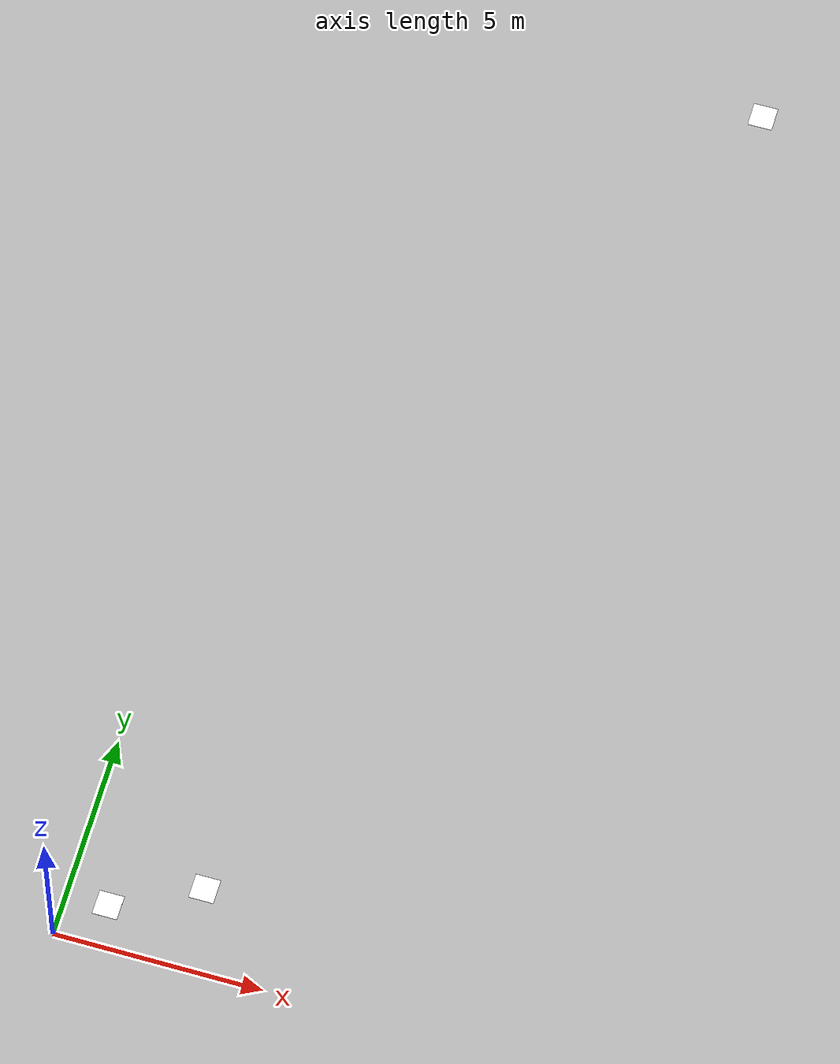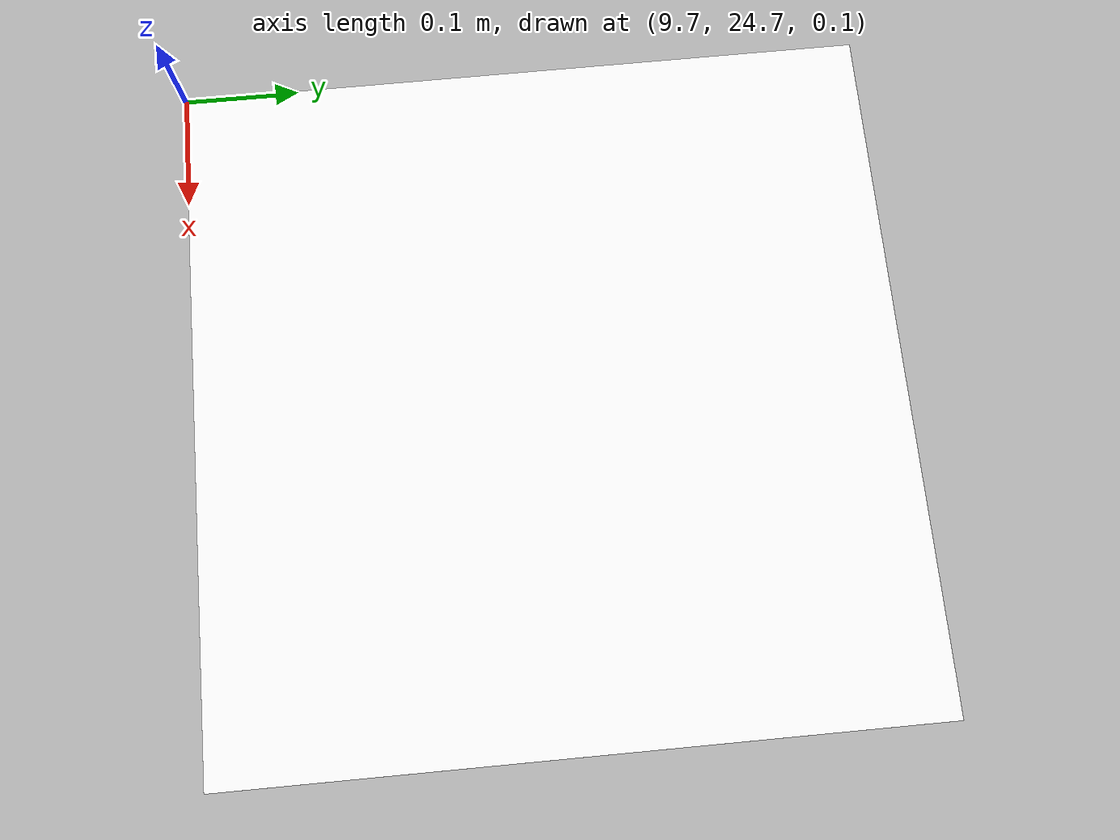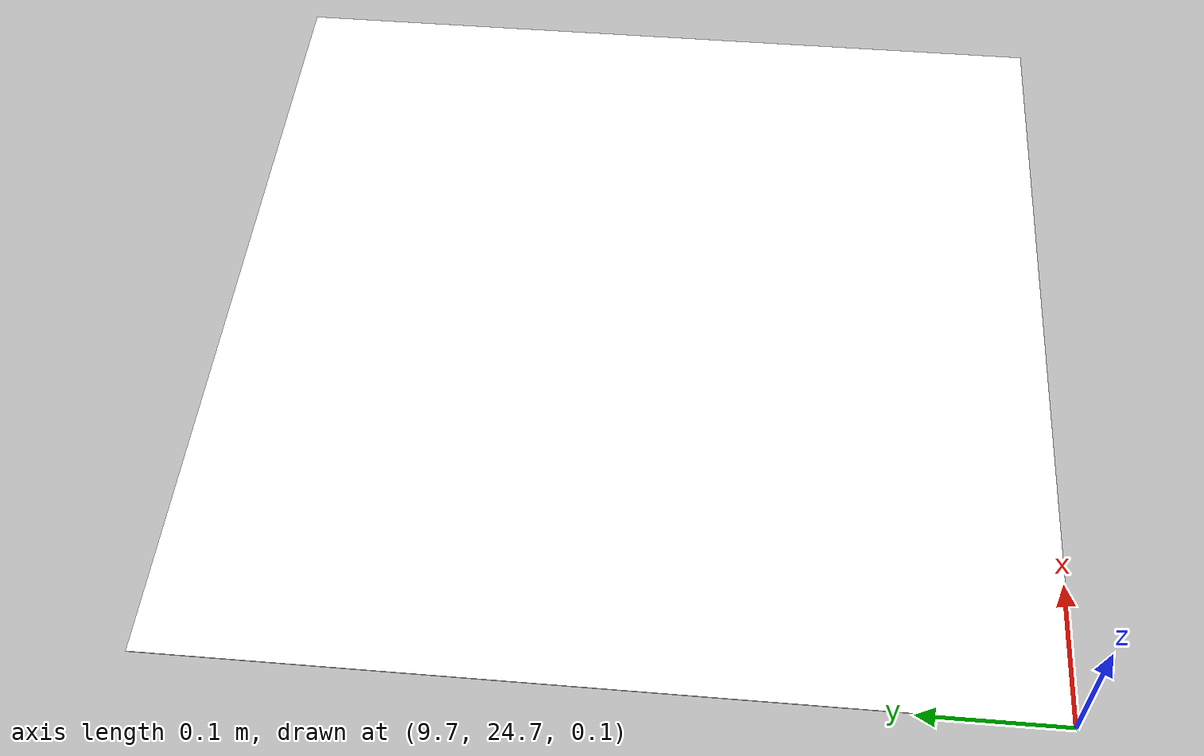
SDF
<sdf version="1.9">
 <world name="ELEC330Campus">
  <physics type="ode">
   <max_step_size>0.004</max_step_size>
   <real_time_factor>1.0</real_time_factor>
   <real_time_update_rate>250</real_time_update_rate>
  </physics>
  <gravity>0 0 -9.8</gravity>
  <magnetic_field>6e-06 2.3e-05 -4.2e-05</magnetic_field>
  <atmosphere type="adiabatic"/>
  <scene>
   <sky><clouds><speed>12</speed></clouds></sky>
   <grid>false</grid>
   <ambient>0.5 0.5 0.5 0.3</ambient>
   <background>0.3 0.3 0.3 0.3</background>
   <shadows>true</shadows>
  </scene>
  <model name="ground_plane">
   <static>true</static>
   <link name="link">
    <collision name="collision">
     <geometry><plane><normal>0 0 1</normal><size>1 1</size></plane></geometry>
     <surface>
      <friction><ode><mu>0.6</mu><mu2>0.6</mu2></ode></friction>
      <contact><collide_bitmask>65535</collide_bitmask><ode><min_depth>0.005</min_depth><kp>1e8</kp></ode></contact>
     </surface>
    </collision>
    <visual name="visual">
     <cast_shadows>false</cast_shadows>
     <geometry><plane><normal>0 0 1</normal><size>800 1200</size></plane></geometry>
     <material>
      <diffuse>0.6 1.0 0.25 0.5</diffuse>
      <specular>0 0 0 0</specular>
      <emissive>0 0 0 0</emissive>
     </material>
    </visual>
   </link>
  </model>
  <model name="campus_mesh">
   <static>true</static>
   <pose>0 -20 0 0 0 0</pose>
   <link name="link">
    <visual name="visual">
     <geometry><mesh><uri>meshes/ELEC330CampusTextured.dae</uri><scale>1 1 0.5</scale></mesh></geometry>
    </visual>
    <collision name="collision">
     <geometry><mesh><uri>meshes/ELEC330CampusTextured.dae</uri><scale>1 1 0.5</scale></mesh></geometry>
    </collision>
   </link>
  </model>
  <include>
   <uri>model://apriltag_landing_pad</uri>
   <name>landing_target</name>
   <pose>10.0 25.0 0.1 0 0 0</pose>
  </include>
  <include>
   <uri>model://apriltag_landing_pad_1</uri>
   <name>landing_target_1</name>
   <pose>1.0 1.0 0.1 0 0 0</pose>
  </include>
  <include>
   <uri>model://apriltag_landing_pad_2</uri>
   <name>landing_target_2</name>
   <pose>3.0 2.0 0.1 0 0 0</pose>
  </include>
  <light name="sunUTC" type="directional">
   <pose>0 0 500 0 0 0</pose>
   <intensity>1</intensity>
   <direction>0.001 0.625 -0.78</direction>
   <diffuse>0.904 0.904 0.904 1</diffuse>
   <specular>0.271 0.271 0.271 1</specular>
   <attenuation><range>2000</range><linear>0</linear><constant>1</constant><quadratic>0</quadratic></attenuation>
  </light>
  <light type="directional" name="sun_2">
   <pose>200 200 200 0 0 0</pose>
   <diffuse>0.5 0.5 0.5 0.3</diffuse>
   <specular>0.2 0.2 0.2 0.3</specular>
   <attenuation><range>2000</range><constant>1</constant><linear>0</linear><quadratic>0</quadratic></attenuation>
   <direction>0.01 0.01 -0.9</direction>
  </light>
  <spherical_coordinates>
   <surface_model>EARTH_WGS84</surface_model>
   <world_frame_orientation>ENU</world_frame_orientation>
   <latitude_deg>53.405822</latitude_deg>
   <longitude_deg>-2.965906</longitude_deg>
   <elevation>0</elevation>
  </spherical_coordinates>
 </world>
</sdf>

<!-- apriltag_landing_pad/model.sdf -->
<sdf version='1.9'>
  <model name='apriltag_landing_pad'>
    <static>true</static>
    <link name='pad_link'>
      <visual name='pad_visual'>
        <pose>0 0 0.003 0 0 0</pose>
        <geometry>
          <plane>
            <normal>0 0 1</normal>
            <size>0.6 0.6</size>
          </plane>
        </geometry>
        <material>
          <ambient>1 1 1 1</ambient>
          <diffuse>1 1 1 1</diffuse>
          <specular>0 0 0 1</specular>
          <pbr>
            <metal>
              <albedo_map>model://apriltag_landing_pad/materials/textures/tag36h11_id0.png</albedo_map>
              <roughness>1.0</roughness>
              <metalness>0.0</metalness>
            </metal>
          </pbr>
        </material>
      </visual>
      <collision name='pad_collision'>
        <geometry>
          <box><size>0.6 0.6 0.005</size></box>
        </geometry>
      </collision>
    </link>
  </model>
</sdf>

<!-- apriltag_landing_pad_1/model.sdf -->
<sdf version='1.9'>
  <model name='apriltag_landing_pad_1'>
    <static>true</static>
    <link name='pad_link'>
      <visual name='pad_visual'>
        <pose>0 0 0.003 0 0 0</pose>
        <geometry>
          <plane>
            <normal>0 0 1</normal>
            <size>0.6 0.6</size>
          </plane>
        </geometry>
        <material>
          <ambient>1 1 1 1</ambient>
          <diffuse>1 1 1 1</diffuse>
          <specular>0 0 0 1</specular>
          <pbr>
            <metal>
              <albedo_map>model://apriltag_landing_pad_1/materials/textures/tag36h11_id1.png</albedo_map>
              <roughness>1.0</roughness>
              <metalness>0.0</metalness>
            </metal>
          </pbr>
        </material>
      </visual>
      <collision name='pad_collision'>
        <geometry>
          <box><size>0.6 0.6 0.005</size></box>
        </geometry>
      </collision>
    </link>
  </model>
</sdf>

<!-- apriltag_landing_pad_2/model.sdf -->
<sdf version='1.9'>
  <model name='apriltag_landing_pad_2'>
    <static>true</static>
    <link name='pad_link'>
      <visual name='pad_visual'>
        <pose>0 0 0.003 0 0 0</pose>
        <geometry>
          <plane>
            <normal>0 0 1</normal>
            <size>0.6 0.6</size>
          </plane>
        </geometry>
        <material>
          <ambient>1 1 1 1</ambient>
          <diffuse>1 1 1 1</diffuse>
          <specular>0 0 0 1</specular>
          <pbr>
            <metal>
              <albedo_map>model://apriltag_landing_pad_2/materials/textures/tag36h11_id2.png</albedo_map>
              <roughness>1.0</roughness>
              <metalness>0.0</metalness>
            </metal>
          </pbr>
        </material>
      </visual>
      <collision name='pad_collision'>
        <geometry>
          <box><size>0.6 0.6 0.005</size></box>
        </geometry>
      </collision>
    </link>
  </model>
</sdf>
